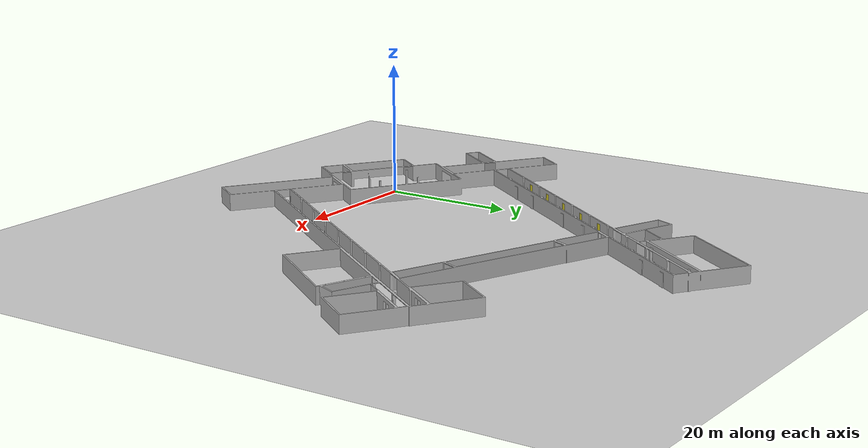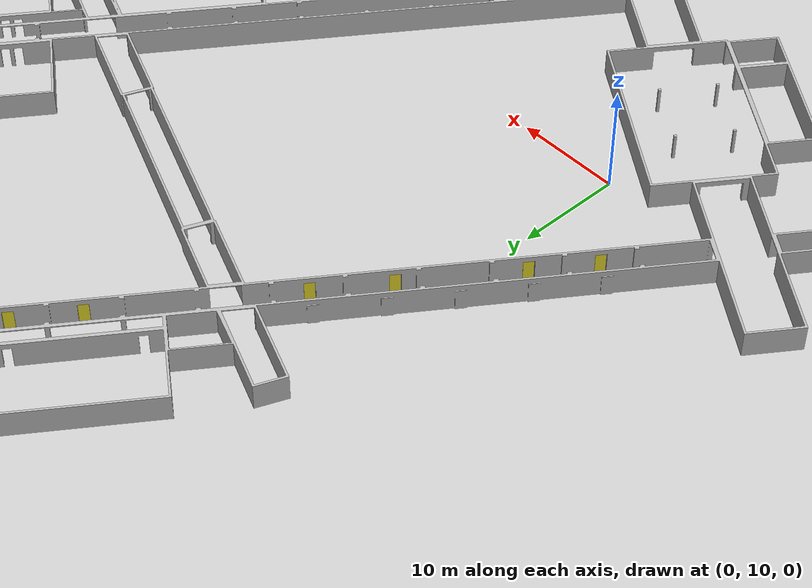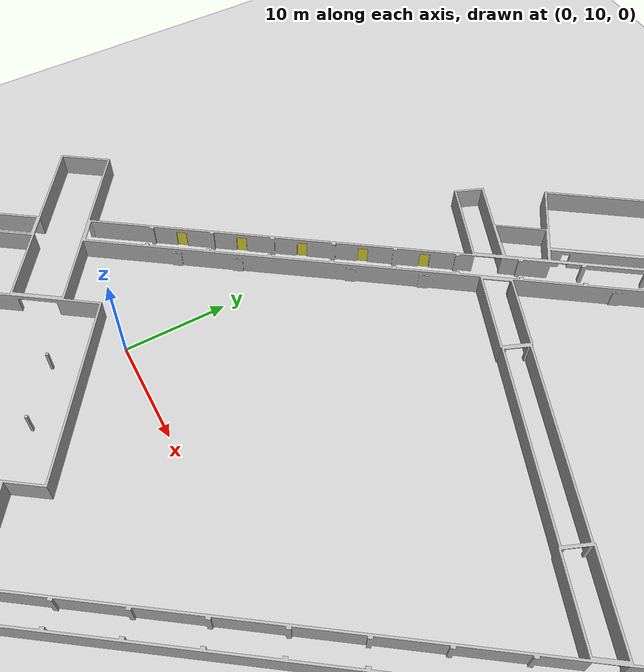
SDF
<?xml version='1.0' encoding='utf-8'?>
<sdf version="1.6">
  <world name="icra_brsu_building_c_level_3b">
    <gravity>0 0 -9.8</gravity>
    <physics default="0" name="default_physics" type="ode">
      <max_step_size>0.001</max_step_size>
      <real_time_factor>1</real_time_factor>
      <real_time_update_rate>1000</real_time_update_rate>
    </physics>
    <scene>
      <ambient>0.6 0.6 0.6 1</ambient>
      <background>0.4 0.4 0.4 1</background>
      <shadows>false</shadows>
    </scene>
    <include>
      <uri>model://sun</uri>
    </include>
    <include>
      <uri>model://ground_plane</uri>
      <pose>0 0 0 0 0 0</pose>
    </include>
    <include>
      <uri>model://icra_brsu_building_c_level_3b</uri>
      <static>true</static>
      <pose>-0.0 0.0 0.0 0.0 0.0 0.0</pose>
    </include>

    <include>
      <name>door-instance-1</name>
      <uri>model://door</uri>
      <static>false</static>
      <pose>-7.018322462592466 17.915531664203286 0.0 0.0 -0.0 -0.610865238198015</pose>

        <plugin name="initial_plugin" filename="libinitial_plugin.so">
          <joint>door:joint-door-hinge</joint>
          <position>0.7</position>
        </plugin>

    </include>

    <include>
      <name>door-instance-6</name>
      <uri>model://door</uri>
      <static>false</static>
      <pose>6.747512009832623 37.57518072713912 0.0 0.0 -0.0 -0.610865238198015</pose>

        <plugin name="initial_plugin" filename="libinitial_plugin.so">
          <joint>door:joint-door-hinge</joint>
          <position>0.7</position>
        </plugin>

    </include>

    <include>
      <name>door-instance-7</name>
      <uri>model://door</uri>
      <static>false</static>
      <pose>1.849764262115327 34.851916692982655 0.0 0.0 -0.0 2.530727415391778</pose>

        <plugin name="initial_plugin" filename="libinitial_plugin.so">
          <joint>door:joint-door-hinge</joint>
          <position>0.7</position>
        </plugin>

    </include>

    <include>
      <name>door-instance-8</name>
      <uri>model://door</uri>
      <static>false</static>
      <pose>-1.5916943559909422 29.937004427248702 0.0 0.0 -0.0 2.530727415391778</pose>

        <plugin name="initial_plugin" filename="libinitial_plugin.so">
          <joint>door:joint-door-hinge</joint>
          <position>0.7</position>
        </plugin>

    </include>

    <include>
      <name>door-instance-4</name>
      <uri>model://door</uri>
      <static>false</static>
      <pose>17.18660315142165 52.48374793319879 0.0 0.0 -0.0 -0.610865238198015</pose>

        <plugin name="initial_plugin" filename="libinitial_plugin.so">
          <joint>door:joint-door-hinge</joint>
          <position>0.7</position>
        </plugin>

    </include>

    <include>
      <name>door-instance-5</name>
      <uri>model://door</uri>
      <static>false</static>
      <pose>20.62806176952792 57.39866019893276 0.0 0.0 -0.0 -0.610865238198015</pose>

        <plugin name="initial_plugin" filename="libinitial_plugin.so">
          <joint>door:joint-door-hinge</joint>
          <position>0.7</position>
        </plugin>

    </include>

    <include>
      <name>door-instance-9</name>
      <uri>model://door</uri>
      <static>false</static>
      <pose>-5.033152974097217 25.022092161514742 0.0 0.0 -0.0 2.530727415391778</pose>

        <plugin name="initial_plugin" filename="libinitial_plugin.so">
          <joint>door:joint-door-hinge</joint>
          <position>0.7</position>
        </plugin>

    </include>

    <include>
      <name>door-instance-2</name>
      <uri>model://door</uri>
      <static>false</static>
      <pose>-3.576863844486196 22.830443929937246 0.0 0.0 -0.0 -0.610865238198015</pose>

        <plugin name="initial_plugin" filename="libinitial_plugin.so">
          <joint>door:joint-door-hinge</joint>
          <position>0.7</position>
        </plugin>

    </include>

    <include>
      <name>door-instance-10</name>
      <uri>model://door</uri>
      <static>false</static>
      <pose>-8.474611592203491 20.10717989578078 0.0 0.0 -0.0 2.530727415391778</pose>

        <plugin name="initial_plugin" filename="libinitial_plugin.so">
          <joint>door:joint-door-hinge</joint>
          <position>0.7</position>
        </plugin>

    </include>

    <include>
      <name>door-instance-11</name>
      <uri>model://door</uri>
      <static>false</static>
      <pose>5.29122288022159 39.76682895871661 0.0 0.0 -0.0 2.530727415391778</pose>

        <plugin name="initial_plugin" filename="libinitial_plugin.so">
          <joint>door:joint-door-hinge</joint>
          <position>0.7</position>
        </plugin>

    </include>

    <include>
      <name>door-instance-3</name>
      <uri>model://door</uri>
      <static>false</static>
      <pose>2.7324769553753043 31.841116417116172 0.0 0.0 -0.0 -0.610865238198015</pose>

        <plugin name="initial_plugin" filename="libinitial_plugin.so">
          <joint>door:joint-door-hinge</joint>
          <position>0.7</position>
        </plugin>

    </include>

  </world>
</sdf>

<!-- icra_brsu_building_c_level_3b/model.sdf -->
<sdf version="1.6">
  <model name="icra_brsu_building_c_level_3b">
    <link name="link">
      <visual name="visual">
	    <geometry>
          <mesh>
            <uri>model://icra_brsu_building_c_level_3b/meshes/icra_brsu_building_c_level_3b.stl</uri>
          </mesh>
        </geometry>
      </visual>
      <collision name="collision">
        <geometry>
          <mesh>
            <uri>model://icra_brsu_building_c_level_3b/meshes/icra_brsu_building_c_level_3b.stl</uri>
          </mesh>
        </geometry>
      </collision>
    </link>
  <static>1</static>
  </model>
</sdf>

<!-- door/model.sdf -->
<sdf version="1.4">
<model name="door:door">
<pose>0 0 0 0 0 0</pose>
<static>false</static>

<link name="door:door-body">
<pose>0.0 0.49000000000000005 1.0 0.0 -0.0 0.0</pose>
<inertial>
<mass>1.0</mass>
<inertia>
<ixx>0.4069</ixx>
<ixy>0.0</ixy>
<ixz>0.0</ixz>
<iyy>0.3322</iyy>
<iyz>0.0</iyz>
<izz>0.0751</izz>
</inertia>
</inertial>
<collision name="collision">
<geometry>
<box>
<size>0.05 0.93 1.98</size>
</box>
</geometry>
</collision>
<visual name="visual">
<geometry>
<box>
<size>0.05 0.93 1.98</size>
</box>
</geometry><material><script><name>Gazebo/DarkYellow</name></script></material></visual>
</link>

<joint type="revolute" name="door:joint-door-hinge">
<pose frame="door:door-hinge">-0.025 0.025 0.995 0.0 -0.0 0.0</pose>
<child>door:door-body</child>
<parent>door:door-hinge</parent>
<axis>
<xyz>0 0 1</xyz>

<limit>
<lower>0.0</lower>
<upper>2.0</upper>
</limit>

</axis>
</joint>

</model>
</sdf>
